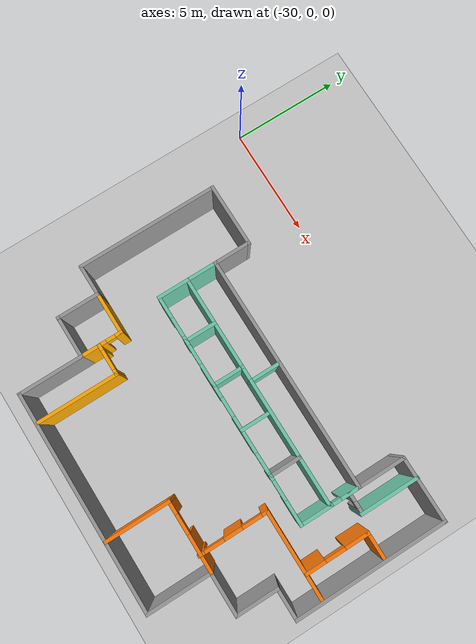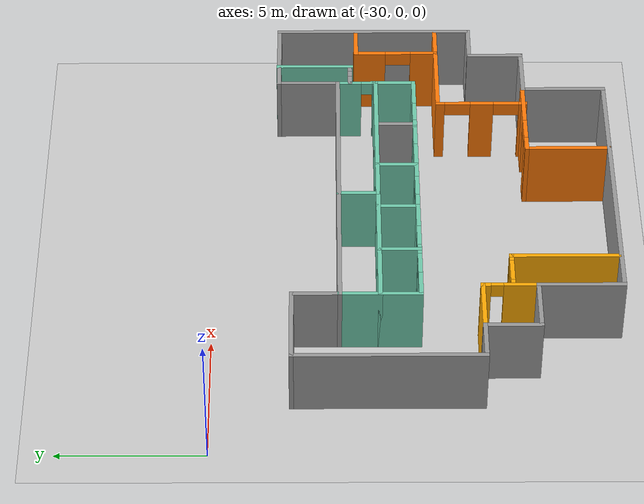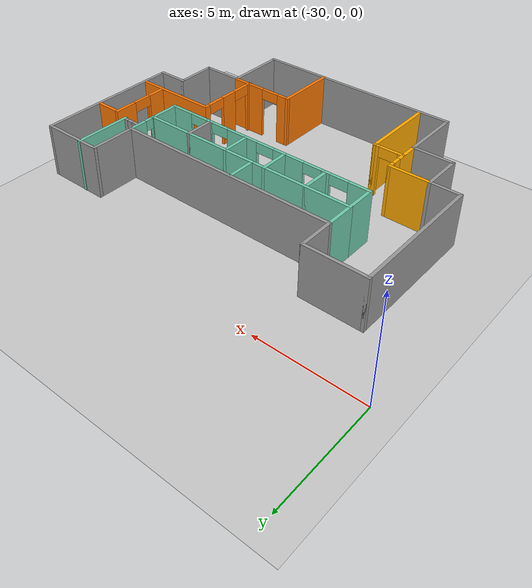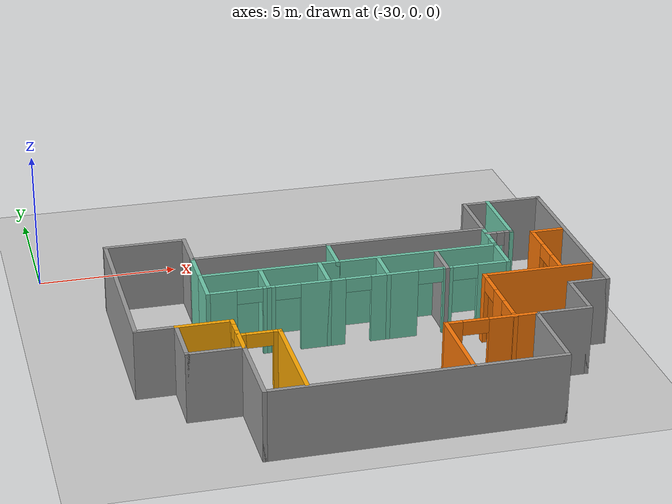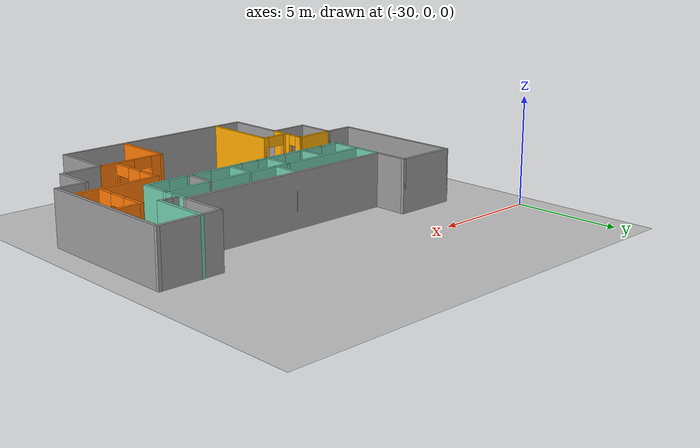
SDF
<sdf version='1.6'>
  <world name='default'>
  <physics name='fleet_physics' type='ode'>
    <max_step_size>0.004</max_step_size>
    <real_time_update_rate>250</real_time_update_rate>
    <real_time_factor>1.0</real_time_factor>
  </physics>
  <plugin name='gazebo_ros_state' filename='libgazebo_ros_state.so'><ros><namespace>/gazebo</namespace></ros><update_rate>60</update_rate></plugin>
  <gravity>0 0 -9.8</gravity>
  <model name="ground_plane">
    <static>1</static>
    <link name="link">
        <collision name="collision">
            <geometry>
                <plane>
                    <normal>0 0 1</normal>
                    <size>100 100</size>
                </plane>
            </geometry>
            <surface>
                <contact>
                    <collide_bitmask>65535</collide_bitmask>
                </contact>
                <friction>
                    <ode>
                        <mu>100</mu>
                        <mu2>50</mu2>
                    </ode>
                </friction>
                <bounce/>
            </surface>
            <max_contacts>10</max_contacts>
        </collision>
        <visual name="visual">
            <cast_shadows>0</cast_shadows>
            <geometry>
                <plane>
                    <normal>0 0 1</normal>
                    <size>100 100</size>
                </plane>
            </geometry>
        </visual>
        <self_collide>0</self_collide>
        <enable_wind>0</enable_wind>
        <kinematic>0</kinematic>
    </link>
</model>
    <include>
      <uri>model://sun</uri>
    </include>

    <include>
      <name>ev_9</name>
      <uri>model://floor_plan</uri>
      <pose>-19.76 -7.98 0 0 0 0</pose>
    </include>

    <gui fullscreen='0'>
      <camera name='user_camera'>
        <pose frame=''>0 -0.5 12.0 0 1.25 1.5666</pose>
        <view_controller>orbit</view_controller>
        <projection_type>perspective</projection_type>
      </camera>
    </gui>

  </world>
</sdf>

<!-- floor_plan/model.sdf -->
<sdf version='1.6'>
  <model name='floor_plan'>
    <pose frame=''>0.552942 -2.96711 0 0 -0 0</pose>
    <link name='Wall_1'>
      <collision name='Wall_1_Collision'>
        <geometry>
          <box>
            <size>6.5 0.15 2.5</size>
          </box>
        </geometry>
        <pose frame=''>0 0 1.25 0 -0 0</pose>
      </collision>
      <visual name='Wall_1_Visual'>
        <pose frame=''>0 0 1.25 0 -0 0</pose>
        <geometry>
          <box>
            <size>6.5 0.15 2.5</size>
          </box>
        </geometry>
        <material>
          <script>
            <uri>file://media/materials/scripts/gazebo.material</uri>
            <name>Gazebo/Grey</name>
          </script>
          <ambient>1 1 1 1</ambient>
        </material>
        <meta>
          <layer>0</layer>
        </meta>
      </visual>
      <pose frame=''>-8.125 2.0896 0 0 0 -1.5708</pose>
    </link>
    <link name='Wall_10'>
      <collision name='Wall_10_Collision'>
        <geometry>
          <box>
            <size>2 0.15 2.5</size>
          </box>
        </geometry>
        <pose frame=''>0 0 1.25 0 -0 0</pose>
      </collision>
      <visual name='Wall_10_Visual'>
        <pose frame=''>0 0 1.25 0 -0 0</pose>
        <geometry>
          <box>
            <size>2 0.15 2.5</size>
          </box>
        </geometry>
        <material>
          <script>
            <uri>file://media/materials/scripts/gazebo.material</uri>
            <name>Gazebo/Grey</name>
          </script>
          <ambient>1 1 1 1</ambient>
        </material>
        <meta>
          <layer>0</layer>
        </meta>
      </visual>
      <pose frame=''>6.775 -2.0104 0 0 -0 1.5708</pose>
    </link>
    <link name='Wall_11'>
      <collision name='Wall_11_Collision'>
        <geometry>
          <box>
            <size>1.5 0.15 2.5</size>
          </box>
        </geometry>
        <pose frame=''>0 0 1.25 0 -0 0</pose>
      </collision>
      <visual name='Wall_11_Visual'>
        <pose frame=''>0 0 1.25 0 -0 0</pose>
        <geometry>
          <box>
            <size>1.5 0.15 2.5</size>
          </box>
        </geometry>
        <material>
          <script>
            <uri>file://media/materials/scripts/gazebo.material</uri>
            <name>Gazebo/Grey</name>
          </script>
          <ambient>1 1 1 1</ambient>
        </material>
        <meta>
          <layer>0</layer>
        </meta>
      </visual>
      <pose frame=''>7.45 -1.0854 0 0 -0 0</pose>
    </link>
    <link name='Wall_12'>
      <collision name='Wall_12_Collision'>
        <geometry>
          <box>
            <size>7 0.15 2.5</size>
          </box>
        </geometry>
        <pose frame=''>0 0 1.25 0 -0 0</pose>
      </collision>
      <visual name='Wall_12_Visual'>
        <pose frame=''>0 0 1.25 0 -0 0</pose>
        <geometry>
          <box>
            <size>7 0.15 2.5</size>
          </box>
        </geometry>
        <material>
          <script>
            <uri>file://media/materials/scripts/gazebo.material</uri>
            <name>Gazebo/Grey</name>
          </script>
          <ambient>1 1 1 1</ambient>
        </material>
        <meta>
          <layer>0</layer>
        </meta>
      </visual>
      <pose frame=''>8.125 2.3396 0 0 -0 1.5708</pose>
    </link>
    <link name='Wall_13'>
      <collision name='Wall_13_Collision'>
        <geometry>
          <box>
            <size>3 0.15 2.5</size>
          </box>
        </geometry>
        <pose frame=''>0 0 1.25 0 -0 0</pose>
      </collision>
      <visual name='Wall_13_Visual'>
        <pose frame=''>0 0 1.25 0 -0 0</pose>
        <geometry>
          <box>
            <size>3 0.15 2.5</size>
          </box>
        </geometry>
        <material>
          <script>
            <uri>file://media/materials/scripts/gazebo.material</uri>
            <name>Gazebo/Grey</name>
          </script>
          <ambient>1 1 1 1</ambient>
        </material>
        <meta>
          <layer>0</layer>
        </meta>
      </visual>
      <pose frame=''>6.7 5.7646 0 0 -0 3.14159</pose>
    </link>
    <link name='Wall_14'>
      <collision name='Wall_14_Collision'>
        <geometry>
          <box>
            <size>2.25 0.15 2.5</size>
          </box>
        </geometry>
        <pose frame=''>0 0 1.25 0 -0 0</pose>
      </collision>
      <visual name='Wall_14_Visual'>
        <pose frame=''>0 0 1.25 0 -0 0</pose>
        <geometry>
          <box>
            <size>2.25 0.15 2.5</size>
          </box>
        </geometry>
        <material>
          <script>
            <uri>file://media/materials/scripts/gazebo.material</uri>
            <name>Gazebo/Grey</name>
          </script>
          <ambient>1 1 1 1</ambient>
        </material>
        <meta>
          <layer>0</layer>
        </meta>
      </visual>
      <pose frame=''>5.275 4.7146 0 0 0 -1.5708</pose>
    </link>
    <link name='Wall_15'>
      <collision name='Wall_15_Collision'>
        <geometry>
          <box>
            <size>10.75 0.15 2.5</size>
          </box>
        </geometry>
        <pose frame=''>0 0 1.25 0 -0 0</pose>
      </collision>
      <visual name='Wall_15_Visual'>
        <pose frame=''>0 0 1.25 0 -0 0</pose>
        <geometry>
          <box>
            <size>10.75 0.15 2.5</size>
          </box>
        </geometry>
        <material>
          <script>
            <uri>file://media/materials/scripts/gazebo.material</uri>
            <name>Gazebo/Grey</name>
          </script>
          <ambient>1 1 1 1</ambient>
        </material>
        <meta>
          <layer>0</layer>
        </meta>
      </visual>
      <pose frame=''>-0.025 3.6646 0 0 -0 3.14159</pose>
    </link>
    <link name='Wall_16'>
      <collision name='Wall_16_Collision'>
        <geometry>
          <box>
            <size>1.75 0.15 2.5</size>
          </box>
        </geometry>
        <pose frame=''>0 0 1.25 0 -0 0</pose>
      </collision>
      <visual name='Wall_16_Visual'>
        <pose frame=''>0 0 1.25 0 -0 0</pose>
        <geometry>
          <box>
            <size>1.75 0.15 2.5</size>
          </box>
        </geometry>
        <material>
          <script>
            <uri>file://media/materials/scripts/gazebo.material</uri>
            <name>Gazebo/Grey</name>
          </script>
          <ambient>1 1 1 1</ambient>
        </material>
        <meta>
          <layer>0</layer>
        </meta>
      </visual>
      <pose frame=''>-5.325 4.4646 0 0 -0 1.5708</pose>
    </link>
    <link name='Wall_18'>
      <collision name='Wall_18_Collision'>
        <geometry>
          <box>
            <size>2.95 0.15 2.5</size>
          </box>
        </geometry>
        <pose frame=''>0 0 1.25 0 -0 0</pose>
      </collision>
      <visual name='Wall_18_Visual'>
        <pose frame=''>0 0 1.25 0 -0 0</pose>
        <geometry>
          <box>
            <size>2.95 0.15 2.5</size>
          </box>
        </geometry>
        <material>
          <script>
            <uri>file://media/materials/scripts/gazebo.material</uri>
            <name>Gazebo/Grey</name>
          </script>
          <ambient>1 1 1 1</ambient>
        </material>
        <meta>
          <layer>0</layer>
        </meta>
      </visual>
      <pose frame=''>-6.725 5.2646 0 0 -0 0</pose>
    </link>
    <link name='Wall_2'>
      <collision name='Wall_2_Collision'>
        <geometry>
          <box>
            <size>1.5 0.15 2.5</size>
          </box>
        </geometry>
        <pose frame=''>0 0 1.25 0 -0 0</pose>
      </collision>
      <visual name='Wall_2_Visual'>
        <pose frame=''>0 0 1.25 0 -0 0</pose>
        <geometry>
          <box>
            <size>1.5 0.15 2.5</size>
          </box>
        </geometry>
        <material>
          <script>
            <uri>file://media/materials/scripts/gazebo.material</uri>
            <name>Gazebo/Grey</name>
          </script>
          <ambient>1 1 1 1</ambient>
        </material>
        <meta>
          <layer>0</layer>
        </meta>
      </visual>
      <pose frame=''>-7.45 -1.0854 0 0 -0 0</pose>
    </link>
    <link name='Wall_20'>
      <collision name='Wall_20_Collision'>
        <geometry>
          <box>
            <size>2 0.15 2.5</size>
          </box>
        </geometry>
        <pose frame=''>0 0 1.25 0 -0 0</pose>
      </collision>
      <visual name='Wall_20_Visual'>
        <pose frame=''>0 0 1.25 0 -0 0</pose>
        <geometry>
          <box>
            <size>2 0.15 2.5</size>
          </box>
        </geometry>
        <material>
          <script>
            <uri>file://media/materials/scripts/gazebo.material</uri>
            <name>Gazebo/Grey</name>
          </script>
          <ambient>1 0.666667 0 1</ambient>
        </material>
        <meta>
          <layer>0</layer>
        </meta>
      </visual>
      <pose frame=''>-5.85 -1.0854 0 0 -0 0</pose>
    </link>
    <link name='Wall_21'>
      <pose frame=''>-4.925 -2.0104 0 0 0 -1.5708</pose>
      <visual name='Wall_21_Visual_0'>
        <pose frame=''>-0.827202 0 1.25 0 -0 0</pose>
        <geometry>
          <box>
            <size>0.345596 0.15 2.5</size>
          </box>
        </geometry>
        <material>
          <script>
            <uri>file://media/materials/scripts/gazebo.material</uri>
            <name>Gazebo/Grey</name>
          </script>
          <ambient>1 0.666667 0 1</ambient>
        </material>
        <meta>
          <layer>0</layer>
        </meta>
      </visual>
      <collision name='Wall_21_Collision_0'>
        <geometry>
          <box>
            <size>0.345596 0.15 2.5</size>
          </box>
        </geometry>
        <pose frame=''>-0.827202 0 1.25 0 -0 0</pose>
      </collision>
      <visual name='Wall_21_Visual_1'>
        <pose frame=''>0.382198 0 1.25 0 -0 0</pose>
        <geometry>
          <box>
            <size>1.2356 0.15 2.5</size>
          </box>
        </geometry>
        <material>
          <script>
            <uri>file://media/materials/scripts/gazebo.material</uri>
            <name>Gazebo/Grey</name>
          </script>
          <ambient>1 0.666667 0 1</ambient>
        </material>
        <meta>
          <layer>0</layer>
        </meta>
      </visual>
      <collision name='Wall_21_Collision_1'>
        <geometry>
          <box>
            <size>1.2356 0.15 2.5</size>
          </box>
        </geometry>
        <pose frame=''>0.382198 0 1.25 0 -0 0</pose>
      </collision>
      <visual name='Wall_21_Visual_2'>
        <pose frame=''>-0.445004 0 2.25 0 -0 0</pose>
        <geometry>
          <box>
            <size>0.418801 0.15 0.5</size>
          </box>
        </geometry>
        <material>
          <script>
            <uri>file://media/materials/scripts/gazebo.material</uri>
            <name>Gazebo/Grey</name>
          </script>
          <ambient>1 0.666667 0 1</ambient>
        </material>
        <meta>
          <layer>0</layer>
        </meta>
      </visual>
      <collision name='Wall_21_Collision_2'>
        <geometry>
          <box>
            <size>0.418801 0.15 0.5</size>
          </box>
        </geometry>
        <pose frame=''>-0.445004 0 2.25 0 -0 0</pose>
      </collision>
    </link>
    <link name='Wall_24'>
      <pose frame=''>-4.23379 -2.09882 0 0 -0 0</pose>
      <visual name='Wall_24_Visual_0'>
        <pose frame=''>-0.6009 0 1.25 0 -0 0</pose>
        <geometry>
          <box>
            <size>0.298199 0.15 2.5</size>
          </box>
        </geometry>
        <material>
          <script>
            <uri>file://media/materials/scripts/gazebo.material</uri>
            <name>Gazebo/Grey</name>
          </script>
          <ambient>1 0.666667 0 1</ambient>
        </material>
        <meta>
          <layer>0</layer>
        </meta>
      </visual>
      <collision name='Wall_24_Collision_0'>
        <geometry>
          <box>
            <size>0.298199 0.15 2.5</size>
          </box>
        </geometry>
        <pose frame=''>-0.6009 0 1.25 0 -0 0</pose>
      </collision>
      <visual name='Wall_24_Visual_1'>
        <pose frame=''>0.5991 0 1.25 0 -0 0</pose>
        <geometry>
          <box>
            <size>0.301801 0.15 2.5</size>
          </box>
        </geometry>
        <material>
          <script>
            <uri>file://media/materials/scripts/gazebo.material</uri>
            <name>Gazebo/Grey</name>
          </script>
          <ambient>1 0.666667 0 1</ambient>
        </material>
        <meta>
          <layer>0</layer>
        </meta>
      </visual>
      <collision name='Wall_24_Collision_1'>
        <geometry>
          <box>
            <size>0.301801 0.15 2.5</size>
          </box>
        </geometry>
        <pose frame=''>0.5991 0 1.25 0 -0 0</pose>
      </collision>
      <visual name='Wall_24_Visual_2'>
        <pose frame=''>-0.001801 0 2.25 0 -0 0</pose>
        <geometry>
          <box>
            <size>0.9 0.15 0.5</size>
          </box>
        </geometry>
        <material>
          <script>
            <uri>file://media/materials/scripts/gazebo.material</uri>
            <name>Gazebo/Grey</name>
          </script>
          <ambient>1 0.666667 0 1</ambient>
        </material>
        <meta>
          <layer>0</layer>
        </meta>
      </visual>
      <collision name='Wall_24_Collision_2'>
        <geometry>
          <box>
            <size>0.9 0.15 0.5</size>
          </box>
        </geometry>
        <pose frame=''>-0.001801 0 2.25 0 -0 0</pose>
      </collision>
    </link>
    <link name='Wall_25'>
      <collision name='Wall_25_Collision'>
        <geometry>
          <box>
            <size>3.75 0.15 2.5</size>
          </box>
        </geometry>
        <pose frame=''>0 0 1.25 0 -0 0</pose>
      </collision>
      <visual name='Wall_25_Visual'>
        <pose frame=''>0 0 1.25 0 -0 0</pose>
        <geometry>
          <box>
            <size>3.75 0.15 2.5</size>
          </box>
        </geometry>
        <material>
          <script>
            <uri>file://media/materials/scripts/gazebo.material</uri>
            <name>Gazebo/Grey</name>
          </script>
          <ambient>1 0.666667 0 1</ambient>
        </material>
        <meta>
          <layer>0</layer>
        </meta>
      </visual>
      <pose frame=''>-3.55879 -3.89882 0 0 0 -1.5708</pose>
    </link>
    <link name='Wall_28'>
      <collision name='Wall_28_Collision'>
        <geometry>
          <box>
            <size>1.5 0.15 2.5</size>
          </box>
        </geometry>
        <pose frame=''>0 0 1.25 0 -0 0</pose>
      </collision>
      <visual name='Wall_28_Visual'>
        <pose frame=''>0 0 1.25 0 -0 0</pose>
        <geometry>
          <box>
            <size>1.5 0.15 2.5</size>
          </box>
        </geometry>
        <material>
          <script>
            <uri>file://media/materials/scripts/gazebo.material</uri>
            <name>Gazebo/Grey</name>
          </script>
          <ambient>0.435294 0.796078 0.67451 1</ambient>
        </material>
        <meta>
          <layer>0</layer>
        </meta>
      </visual>
      <pose frame=''>-5.325 2.9896 0 0 0 -1.5708</pose>
    </link>
    <link name='Wall_29'>
      <collision name='Wall_29_Collision'>
        <geometry>
          <box>
            <size>5 0.15 2.5</size>
          </box>
        </geometry>
        <pose frame=''>0 0 1.25 0 -0 0</pose>
      </collision>
      <visual name='Wall_29_Visual'>
        <pose frame=''>0 0 1.25 0 -0 0</pose>
        <geometry>
          <box>
            <size>5 0.15 2.5</size>
          </box>
        </geometry>
        <material>
          <script>
            <uri>file://media/materials/scripts/gazebo.material</uri>
            <name>Gazebo/Grey</name>
          </script>
          <ambient>0.435294 0.796078 0.67451 1</ambient>
        </material>
        <meta>
          <layer>0</layer>
        </meta>
      </visual>
      <pose frame=''>-2.9 2.3146 0 0 -0 0</pose>
    </link>
    <link name='Wall_3'>
      <collision name='Wall_3_Collision'>
        <geometry>
          <box>
            <size>2 0.15 2.5</size>
          </box>
        </geometry>
        <pose frame=''>0 0 1.25 0 -0 0</pose>
      </collision>
      <visual name='Wall_3_Visual'>
        <pose frame=''>0 0 1.25 0 -0 0</pose>
        <geometry>
          <box>
            <size>2 0.15 2.5</size>
          </box>
        </geometry>
        <material>
          <script>
            <uri>file://media/materials/scripts/gazebo.material</uri>
            <name>Gazebo/Grey</name>
          </script>
          <ambient>1 1 1 1</ambient>
        </material>
        <meta>
          <layer>0</layer>
        </meta>
      </visual>
      <pose frame=''>-6.775 -2.0104 0 0 0 -1.5708</pose>
    </link>
    <link name='Wall_30'>
      <collision name='Wall_30_Collision'>
        <geometry>
          <box>
            <size>1.5 0.15 2.5</size>
          </box>
        </geometry>
        <pose frame=''>0 0 1.25 0 -0 0</pose>
      </collision>
      <visual name='Wall_30_Visual'>
        <pose frame=''>0 0 1.25 0 -0 0</pose>
        <geometry>
          <box>
            <size>1.5 0.15 2.5</size>
          </box>
        </geometry>
        <material>
          <script>
            <uri>file://media/materials/scripts/gazebo.material</uri>
            <name>Gazebo/Grey</name>
          </script>
          <ambient>0.435294 0.796078 0.67451 1</ambient>
        </material>
        <meta>
          <layer>0</layer>
        </meta>
      </visual>
      <pose frame=''>-0.475 2.9896 0 0 -0 1.5708</pose>
    </link>
    <link name='Wall_32'>
      <collision name='Wall_32_Collision'>
        <geometry>
          <box>
            <size>5.9 0.15 2.5</size>
          </box>
        </geometry>
        <pose frame=''>0 0 1.25 0 -0 0</pose>
      </collision>
      <visual name='Wall_32_Visual'>
        <pose frame=''>0 0 1.25 0 -0 0</pose>
        <geometry>
          <box>
            <size>5.9 0.15 2.5</size>
          </box>
        </geometry>
        <material>
          <script>
            <uri>file://media/materials/scripts/gazebo.material</uri>
            <name>Gazebo/Grey</name>
          </script>
          <ambient>0.435294 0.796078 0.67451 1</ambient>
        </material>
        <meta>
          <layer>0</layer>
        </meta>
      </visual>
      <pose frame=''>2.4 2.3146 0 0 -0 0</pose>
    </link>
    <link name='Wall_33'>
      <pose frame=''>5.275 2.9896 0 0 -0 1.5708</pose>
      <visual name='Wall_33_Visual_0'>
        <pose frame=''>-0.651951 0 1.25 0 -0 0</pose>
        <geometry>
          <box>
            <size>0.196098 0.15 2.5</size>
          </box>
        </geometry>
        <material>
          <script>
            <uri>file://media/materials/scripts/gazebo.material</uri>
            <name>Gazebo/Grey</name>
          </script>
          <ambient>0.435294 0.796078 0.67451 1</ambient>
        </material>
        <meta>
          <layer>0</layer>
        </meta>
      </visual>
      <collision name='Wall_33_Collision_0'>
        <geometry>
          <box>
            <size>0.196098 0.15 2.5</size>
          </box>
        </geometry>
        <pose frame=''>-0.651951 0 1.25 0 -0 0</pose>
      </collision>
      <visual name='Wall_33_Visual_1'>
        <pose frame=''>0.292412 0 1.25 0 -0 0</pose>
        <geometry>
          <box>
            <size>0.915176 0.15 2.5</size>
          </box>
        </geometry>
        <material>
          <script>
            <uri>file://media/materials/scripts/gazebo.material</uri>
            <name>Gazebo/Grey</name>
          </script>
          <ambient>0.435294 0.796078 0.67451 1</ambient>
        </material>
        <meta>
          <layer>0</layer>
        </meta>
      </visual>
      <collision name='Wall_33_Collision_1'>
        <geometry>
          <box>
            <size>0.915176 0.15 2.5</size>
          </box>
        </geometry>
        <pose frame=''>0.292412 0 1.25 0 -0 0</pose>
      </collision>
      <visual name='Wall_33_Visual_2'>
        <pose frame=''>-0.359539 0 2.25 0 -0 0</pose>
        <geometry>
          <box>
            <size>0.388726 0.15 0.5</size>
          </box>
        </geometry>
        <material>
          <script>
            <uri>file://media/materials/scripts/gazebo.material</uri>
            <name>Gazebo/Grey</name>
          </script>
          <ambient>0.435294 0.796078 0.67451 1</ambient>
        </material>
        <meta>
          <layer>0</layer>
        </meta>
      </visual>
      <collision name='Wall_33_Collision_2'>
        <geometry>
          <box>
            <size>0.388726 0.15 0.5</size>
          </box>
        </geometry>
        <pose frame=''>-0.359539 0 2.25 0 -0 0</pose>
      </collision>
    </link>
    <link name='Wall_35'>
      <collision name='Wall_35_Collision'>
        <geometry>
          <box>
            <size>1.5 0.15 2.5</size>
          </box>
        </geometry>
        <pose frame=''>0 0 1.25 0 -0 0</pose>
      </collision>
      <visual name='Wall_35_Visual'>
        <pose frame=''>0 0 1.25 0 -0 0</pose>
        <geometry>
          <box>
            <size>1.5 0.15 2.5</size>
          </box>
        </geometry>
        <material>
          <script>
            <uri>file://media/materials/scripts/gazebo.material</uri>
            <name>Gazebo/Grey</name>
          </script>
          <ambient>0.435294 0.796078 0.67451 1</ambient>
        </material>
        <meta>
          <layer>0</layer>
        </meta>
      </visual>
      <pose frame=''>-5.325 1.6396 0 0 0 -1.5708</pose>
    </link>
    <link name='Wall_36'>
      <pose frame=''>-4.275 0.964604 0 0 -0 0</pose>
      <visual name='Wall_36_Visual_0'>
        <pose frame=''>-0.591928 0 1.25 0 -0 0</pose>
        <geometry>
          <box>
            <size>1.06614 0.15 2.5</size>
          </box>
        </geometry>
        <material>
          <script>
            <uri>file://media/materials/scripts/gazebo.material</uri>
            <name>Gazebo/Grey</name>
          </script>
          <ambient>0.435294 0.796078 0.67451 1</ambient>
        </material>
        <meta>
          <layer>0</layer>
        </meta>
      </visual>
      <collision name='Wall_36_Collision_0'>
        <geometry>
          <box>
            <size>1.06614 0.15 2.5</size>
          </box>
        </geometry>
        <pose frame=''>-0.591928 0 1.25 0 -0 0</pose>
      </collision>
      <visual name='Wall_36_Visual_1'>
        <pose frame=''>0.983072 0 1.25 0 -0 0</pose>
        <geometry>
          <box>
            <size>0.283855 0.15 2.5</size>
          </box>
        </geometry>
        <material>
          <script>
            <uri>file://media/materials/scripts/gazebo.material</uri>
            <name>Gazebo/Grey</name>
          </script>
          <ambient>0.435294 0.796078 0.67451 1</ambient>
        </material>
        <meta>
          <layer>0</layer>
        </meta>
      </visual>
      <collision name='Wall_36_Collision_1'>
        <geometry>
          <box>
            <size>0.283855 0.15 2.5</size>
          </box>
        </geometry>
        <pose frame=''>0.983072 0 1.25 0 -0 0</pose>
      </collision>
      <visual name='Wall_36_Visual_2'>
        <pose frame=''>0.391145 0 2.25 0 -0 0</pose>
        <geometry>
          <box>
            <size>0.9 0.15 0.5</size>
          </box>
        </geometry>
        <material>
          <script>
            <uri>file://media/materials/scripts/gazebo.material</uri>
            <name>Gazebo/Grey</name>
          </script>
          <ambient>0.435294 0.796078 0.67451 1</ambient>
        </material>
        <meta>
          <layer>0</layer>
        </meta>
      </visual>
      <collision name='Wall_36_Collision_2'>
        <geometry>
          <box>
            <size>0.9 0.15 0.5</size>
          </box>
        </geometry>
        <pose frame=''>0.391145 0 2.25 0 -0 0</pose>
      </collision>
    </link>
    <link name='Wall_37'>
      <collision name='Wall_37_Collision'>
        <geometry>
          <box>
            <size>1.5 0.15 2.5</size>
          </box>
        </geometry>
        <pose frame=''>0 0 1.25 0 -0 0</pose>
      </collision>
      <visual name='Wall_37_Visual'>
        <pose frame=''>0 0 1.25 0 -0 0</pose>
        <geometry>
          <box>
            <size>1.5 0.15 2.5</size>
          </box>
        </geometry>
        <material>
          <script>
            <uri>file://media/materials/scripts/gazebo.material</uri>
            <name>Gazebo/Grey</name>
          </script>
          <ambient>0.435294 0.796078 0.67451 1</ambient>
        </material>
        <meta>
          <layer>0</layer>
        </meta>
      </visual>
      <pose frame=''>-3.225 1.6396 0 0 -0 1.5708</pose>
    </link>
    <link name='Wall_39'>
      <pose frame=''>-2.175 0.964604 0 0 -0 0</pose>
      <visual name='Wall_39_Visual_0'>
        <pose frame=''>-0.980278 0 1.25 0 -0 0</pose>
        <geometry>
          <box>
            <size>0.289443 0.15 2.5</size>
          </box>
        </geometry>
        <material>
          <script>
            <uri>file://media/materials/scripts/gazebo.material</uri>
            <name>Gazebo/Grey</name>
          </script>
          <ambient>0.435294 0.796078 0.67451 1</ambient>
        </material>
        <meta>
          <layer>0</layer>
        </meta>
      </visual>
      <collision name='Wall_39_Collision_0'>
        <geometry>
          <box>
            <size>0.289443 0.15 2.5</size>
          </box>
        </geometry>
        <pose frame=''>-0.980278 0 1.25 0 -0 0</pose>
      </collision>
      <visual name='Wall_39_Visual_1'>
        <pose frame=''>0.594722 0 1.25 0 -0 0</pose>
        <geometry>
          <box>
            <size>1.06056 0.15 2.5</size>
          </box>
        </geometry>
        <material>
          <script>
            <uri>file://media/materials/scripts/gazebo.material</uri>
            <name>Gazebo/Grey</name>
          </script>
          <ambient>0.435294 0.796078 0.67451 1</ambient>
        </material>
        <meta>
          <layer>0</layer>
        </meta>
      </visual>
      <collision name='Wall_39_Collision_1'>
        <geometry>
          <box>
            <size>1.06056 0.15 2.5</size>
          </box>
        </geometry>
        <pose frame=''>0.594722 0 1.25 0 -0 0</pose>
      </collision>
      <visual name='Wall_39_Visual_2'>
        <pose frame=''>-0.385557 0 2.25 0 -0 0</pose>
        <geometry>
          <box>
            <size>0.9 0.15 0.5</size>
          </box>
        </geometry>
        <material>
          <script>
            <uri>file://media/materials/scripts/gazebo.material</uri>
            <name>Gazebo/Grey</name>
          </script>
          <ambient>0.435294 0.796078 0.67451 1</ambient>
        </material>
        <meta>
          <layer>0</layer>
        </meta>
      </visual>
      <collision name='Wall_39_Collision_2'>
        <geometry>
          <box>
            <size>0.9 0.15 0.5</size>
          </box>
        </geometry>
        <pose frame=''>-0.385557 0 2.25 0 -0 0</pose>
      </collision>
    </link>
    <link name='Wall_4'>
      <collision name='Wall_4_Collision'>
        <geometry>
          <box>
            <size>2 0.15 2.5</size>
          </box>
        </geometry>
        <pose frame=''>0 0 1.25 0 -0 0</pose>
      </collision>
      <visual name='Wall_4_Visual'>
        <pose frame=''>0 0 1.25 0 -0 0</pose>
        <geometry>
          <box>
            <size>2 0.15 2.5</size>
          </box>
        </geometry>
        <material>
          <script>
            <uri>file://media/materials/scripts/gazebo.material</uri>
            <name>Gazebo/Grey</name>
          </script>
          <ambient>1 1 1 1</ambient>
        </material>
        <meta>
          <layer>0</layer>
        </meta>
      </visual>
      <pose frame=''>-5.85 -2.9354 0 0 -0 0</pose>
    </link>
    <link name='Wall_40'>
      <collision name='Wall_40_Collision'>
        <geometry>
          <box>
            <size>1.5 0.15 2.5</size>
          </box>
        </geometry>
        <pose frame=''>0 0 1.25 0 -0 0</pose>
      </collision>
      <visual name='Wall_40_Visual'>
        <pose frame=''>0 0 1.25 0 -0 0</pose>
        <geometry>
          <box>
            <size>1.5 0.15 2.5</size>
          </box>
        </geometry>
        <material>
          <script>
            <uri>file://media/materials/scripts/gazebo.material</uri>
            <name>Gazebo/Grey</name>
          </script>
          <ambient>0.435294 0.796078 0.67451 1</ambient>
        </material>
        <meta>
          <layer>0</layer>
        </meta>
      </visual>
      <pose frame=''>-1.125 1.6396 0 0 -0 1.5708</pose>
    </link>
    <link name='Wall_42'>
      <pose frame=''>-0.075 0.964604 0 0 -0 0</pose>
      <visual name='Wall_42_Visual_0'>
        <pose frame=''>-0.797205 0 1.25 0 -0 0</pose>
        <geometry>
          <box>
            <size>0.65559 0.15 2.5</size>
          </box>
        </geometry>
        <material>
          <script>
            <uri>file://media/materials/scripts/gazebo.material</uri>
            <name>Gazebo/Grey</name>
          </script>
          <ambient>0.435294 0.796078 0.67451 1</ambient>
        </material>
        <meta>
          <layer>0</layer>
        </meta>
      </visual>
      <collision name='Wall_42_Collision_0'>
        <geometry>
          <box>
            <size>0.65559 0.15 2.5</size>
          </box>
        </geometry>
        <pose frame=''>-0.797205 0 1.25 0 -0 0</pose>
      </collision>
      <visual name='Wall_42_Visual_1'>
        <pose frame=''>0.777795 0 1.25 0 -0 0</pose>
        <geometry>
          <box>
            <size>0.69441 0.15 2.5</size>
          </box>
        </geometry>
        <material>
          <script>
            <uri>file://media/materials/scripts/gazebo.material</uri>
            <name>Gazebo/Grey</name>
          </script>
          <ambient>0.435294 0.796078 0.67451 1</ambient>
        </material>
        <meta>
          <layer>0</layer>
        </meta>
      </visual>
      <collision name='Wall_42_Collision_1'>
        <geometry>
          <box>
            <size>0.69441 0.15 2.5</size>
          </box>
        </geometry>
        <pose frame=''>0.777795 0 1.25 0 -0 0</pose>
      </collision>
      <visual name='Wall_42_Visual_2'>
        <pose frame=''>-0.01941 0 2.25 0 -0 0</pose>
        <geometry>
          <box>
            <size>0.9 0.15 0.5</size>
          </box>
        </geometry>
        <material>
          <script>
            <uri>file://media/materials/scripts/gazebo.material</uri>
            <name>Gazebo/Grey</name>
          </script>
          <ambient>0.435294 0.796078 0.67451 1</ambient>
        </material>
        <meta>
          <layer>0</layer>
        </meta>
      </visual>
      <collision name='Wall_42_Collision_2'>
        <geometry>
          <box>
            <size>0.9 0.15 0.5</size>
          </box>
        </geometry>
        <pose frame=''>-0.01941 0 2.25 0 -0 0</pose>
      </collision>
    </link>
    <link name='Wall_43'>
      <collision name='Wall_43_Collision'>
        <geometry>
          <box>
            <size>1.5 0.15 2.5</size>
          </box>
        </geometry>
        <pose frame=''>0 0 1.25 0 -0 0</pose>
      </collision>
      <visual name='Wall_43_Visual'>
        <pose frame=''>0 0 1.25 0 -0 0</pose>
        <geometry>
          <box>
            <size>1.5 0.15 2.5</size>
          </box>
        </geometry>
        <material>
          <script>
            <uri>file://media/materials/scripts/gazebo.material</uri>
            <name>Gazebo/Grey</name>
          </script>
          <ambient>0.435294 0.796078 0.67451 1</ambient>
        </material>
        <meta>
          <layer>0</layer>
        </meta>
      </visual>
      <pose frame=''>0.975 1.6396 0 0 -0 1.5708</pose>
    </link>
    <link name='Wall_45'>
      <pose frame=''>2.025 0.964604 0 0 -0 0</pose>
      <visual name='Wall_45_Visual_0'>
        <pose frame=''>-0.5615 0 1.25 0 -0 0</pose>
        <geometry>
          <box>
            <size>1.127 0.15 2.5</size>
          </box>
        </geometry>
        <material>
          <script>
            <uri>file://media/materials/scripts/gazebo.material</uri>
            <name>Gazebo/Grey</name>
          </script>
          <ambient>0.435294 0.796078 0.67451 1</ambient>
        </material>
        <meta>
          <layer>0</layer>
        </meta>
      </visual>
      <collision name='Wall_45_Collision_0'>
        <geometry>
          <box>
            <size>1.127 0.15 2.5</size>
          </box>
        </geometry>
        <pose frame=''>-0.5615 0 1.25 0 -0 0</pose>
      </collision>
      <visual name='Wall_45_Visual_1'>
        <pose frame=''>1.0135 0 1.25 0 -0 0</pose>
        <geometry>
          <box>
            <size>0.223 0.15 2.5</size>
          </box>
        </geometry>
        <material>
          <script>
            <uri>file://media/materials/scripts/gazebo.material</uri>
            <name>Gazebo/Grey</name>
          </script>
          <ambient>0.435294 0.796078 0.67451 1</ambient>
        </material>
        <meta>
          <layer>0</layer>
        </meta>
      </visual>
      <collision name='Wall_45_Collision_1'>
        <geometry>
          <box>
            <size>0.223 0.15 2.5</size>
          </box>
        </geometry>
        <pose frame=''>1.0135 0 1.25 0 -0 0</pose>
      </collision>
      <visual name='Wall_45_Visual_2'>
        <pose frame=''>0.452 0 2.25 0 -0 0</pose>
        <geometry>
          <box>
            <size>0.9 0.15 0.5</size>
          </box>
        </geometry>
        <material>
          <script>
            <uri>file://media/materials/scripts/gazebo.material</uri>
            <name>Gazebo/Grey</name>
          </script>
          <ambient>0.435294 0.796078 0.67451 1</ambient>
        </material>
        <meta>
          <layer>0</layer>
        </meta>
      </visual>
      <collision name='Wall_45_Collision_2'>
        <geometry>
          <box>
            <size>0.9 0.15 0.5</size>
          </box>
        </geometry>
        <pose frame=''>0.452 0 2.25 0 -0 0</pose>
      </collision>
    </link>
    <link name='Wall_46'>
      <collision name='Wall_46_Collision'>
        <geometry>
          <box>
            <size>1.5 0.15 2.5</size>
          </box>
        </geometry>
        <pose frame=''>0 0 1.25 0 -0 0</pose>
      </collision>
      <visual name='Wall_46_Visual'>
        <pose frame=''>0 0 1.25 0 -0 0</pose>
        <geometry>
          <box>
            <size>1.5 0.15 2.5</size>
          </box>
        </geometry>
        <material>
          <script>
            <uri>file://media/materials/scripts/gazebo.material</uri>
            <name>Gazebo/Grey</name>
          </script>
          <ambient>1 1 1 1</ambient>
        </material>
        <meta>
          <layer>0</layer>
        </meta>
      </visual>
      <pose frame=''>3.075 1.6396 0 0 -0 1.5708</pose>
    </link>
    <link name='Wall_48'>
      <pose frame=''>4.175 0.964604 0 0 -0 0</pose>
      <visual name='Wall_48_Visual_0'>
        <pose frame=''>-1.03744 0 1.25 0 -0 0</pose>
        <geometry>
          <box>
            <size>0.275111 0.15 2.5</size>
          </box>
        </geometry>
        <material>
          <script>
            <uri>file://media/materials/scripts/gazebo.material</uri>
            <name>Gazebo/Grey</name>
          </script>
          <ambient>0.435294 0.796078 0.67451 1</ambient>
        </material>
        <meta>
          <layer>0</layer>
        </meta>
      </visual>
      <collision name='Wall_48_Collision_0'>
        <geometry>
          <box>
            <size>0.275111 0.15 2.5</size>
          </box>
        </geometry>
        <pose frame=''>-1.03744 0 1.25 0 -0 0</pose>
      </collision>
      <visual name='Wall_48_Visual_1'>
        <pose frame=''>0.587555 0 1.25 0 -0 0</pose>
        <geometry>
          <box>
            <size>1.17489 0.15 2.5</size>
          </box>
        </geometry>
        <material>
          <script>
            <uri>file://media/materials/scripts/gazebo.material</uri>
            <name>Gazebo/Grey</name>
          </script>
          <ambient>0.435294 0.796078 0.67451 1</ambient>
        </material>
        <meta>
          <layer>0</layer>
        </meta>
      </visual>
      <collision name='Wall_48_Collision_1'>
        <geometry>
          <box>
            <size>1.17489 0.15 2.5</size>
          </box>
        </geometry>
        <pose frame=''>0.587555 0 1.25 0 -0 0</pose>
      </collision>
      <visual name='Wall_48_Visual_2'>
        <pose frame=''>-0.449889 0 2.25 0 -0 0</pose>
        <geometry>
          <box>
            <size>0.9 0.15 0.5</size>
          </box>
        </geometry>
        <material>
          <script>
            <uri>file://media/materials/scripts/gazebo.material</uri>
            <name>Gazebo/Grey</name>
          </script>
          <ambient>0.435294 0.796078 0.67451 1</ambient>
        </material>
        <meta>
          <layer>0</layer>
        </meta>
      </visual>
      <collision name='Wall_48_Collision_2'>
        <geometry>
          <box>
            <size>0.9 0.15 0.5</size>
          </box>
        </geometry>
        <pose frame=''>-0.449889 0 2.25 0 -0 0</pose>
      </collision>
    </link>
    <link name='Wall_49'>
      <collision name='Wall_49_Collision'>
        <geometry>
          <box>
            <size>1.5 0.15 2.5</size>
          </box>
        </geometry>
        <pose frame=''>0 0 1.25 0 -0 0</pose>
      </collision>
      <visual name='Wall_49_Visual'>
        <pose frame=''>0 0 1.25 0 -0 0</pose>
        <geometry>
          <box>
            <size>1.5 0.15 2.5</size>
          </box>
        </geometry>
        <material>
          <script>
            <uri>file://media/materials/scripts/gazebo.material</uri>
            <name>Gazebo/Grey</name>
          </script>
          <ambient>0.435294 0.796078 0.67451 1</ambient>
        </material>
        <meta>
          <layer>0</layer>
        </meta>
      </visual>
      <pose frame=''>5.275 1.6396 0 0 -0 1.5708</pose>
    </link>
    <link name='Wall_52'>
      <collision name='Wall_52_Collision'>
        <geometry>
          <box>
            <size>3 0.15 2.5</size>
          </box>
        </geometry>
        <pose frame=''>0 0 1.25 0 -0 0</pose>
      </collision>
      <visual name='Wall_52_Visual'>
        <pose frame=''>0 0 1.25 0 -0 0</pose>
        <geometry>
          <box>
            <size>3 0.15 2.5</size>
          </box>
        </geometry>
        <material>
          <script>
            <uri>file://media/materials/scripts/gazebo.material</uri>
            <name>Gazebo/Grey</name>
          </script>
          <ambient>0.996078 0.47451 0.0196078 1</ambient>
        </material>
        <meta>
          <layer>0</layer>
        </meta>
      </visual>
      <pose frame=''>1.79248 -4.3395 0 0 -0 1.5708</pose>
    </link>
    <link name='Wall_53'>
      <pose frame=''>3.34247 -2.91451 0 0 -0 0</pose>
      <visual name='Wall_53_Visual_0'>
        <pose frame=''>-1.30739 0 1.25 0 -0 0</pose>
        <geometry>
          <box>
            <size>0.635222 0.15 2.5</size>
          </box>
        </geometry>
        <material>
          <script>
            <uri>file://media/materials/scripts/gazebo.material</uri>
            <name>Gazebo/Grey</name>
          </script>
          <ambient>0.996078 0.47451 0.0196078 1</ambient>
        </material>
        <meta>
          <layer>0</layer>
        </meta>
      </visual>
      <collision name='Wall_53_Collision_0'>
        <geometry>
          <box>
            <size>0.635222 0.15 2.5</size>
          </box>
        </geometry>
        <pose frame=''>-1.30739 0 1.25 0 -0 0</pose>
      </collision>
      <visual name='Wall_53_Visual_1'>
        <pose frame=''>0.767611 0 1.25 0 -0 0</pose>
        <geometry>
          <box>
            <size>1.71478 0.15 2.5</size>
          </box>
        </geometry>
        <material>
          <script>
            <uri>file://media/materials/scripts/gazebo.material</uri>
            <name>Gazebo/Grey</name>
          </script>
          <ambient>0.996078 0.47451 0.0196078 1</ambient>
        </material>
        <meta>
          <layer>0</layer>
        </meta>
      </visual>
      <collision name='Wall_53_Collision_1'>
        <geometry>
          <box>
            <size>1.71478 0.15 2.5</size>
          </box>
        </geometry>
        <pose frame=''>0.767611 0 1.25 0 -0 0</pose>
      </collision>
      <visual name='Wall_53_Visual_2'>
        <pose frame=''>-0.539778 0 2.25 0 -0 0</pose>
        <geometry>
          <box>
            <size>0.9 0.15 0.5</size>
          </box>
        </geometry>
        <material>
          <script>
            <uri>file://media/materials/scripts/gazebo.material</uri>
            <name>Gazebo/Grey</name>
          </script>
          <ambient>0.996078 0.47451 0.0196078 1</ambient>
        </material>
        <meta>
          <layer>0</layer>
        </meta>
      </visual>
      <collision name='Wall_53_Collision_2'>
        <geometry>
          <box>
            <size>0.9 0.15 0.5</size>
          </box>
        </geometry>
        <pose frame=''>-0.539778 0 2.25 0 -0 0</pose>
      </collision>
    </link>
    <link name='Wall_55'>
      <pose frame=''>4.1528 -1.42238 0 0 -0 1.5708</pose>
      <visual name='Wall_55_Visual_0'>
        <pose frame=''>-1.47502 0 1.25 0 -0 0</pose>
        <geometry>
          <box>
            <size>0.299954 0.15 2.5</size>
          </box>
        </geometry>
        <material>
          <script>
            <uri>file://media/materials/scripts/gazebo.material</uri>
            <name>Gazebo/Grey</name>
          </script>
          <ambient>0.996078 0.47451 0.0196078 1</ambient>
        </material>
        <meta>
          <layer>0</layer>
        </meta>
      </visual>
      <collision name='Wall_55_Collision_0'>
        <geometry>
          <box>
            <size>0.299954 0.15 2.5</size>
          </box>
        </geometry>
        <pose frame=''>-1.47502 0 1.25 0 -0 0</pose>
      </collision>
      <visual name='Wall_55_Visual_1'>
        <pose frame=''>-0.010391 0 1.25 0 -0 0</pose>
        <geometry>
          <box>
            <size>0.82931 0.15 2.5</size>
          </box>
        </geometry>
        <material>
          <script>
            <uri>file://media/materials/scripts/gazebo.material</uri>
            <name>Gazebo/Grey</name>
          </script>
          <ambient>0.996078 0.47451 0.0196078 1</ambient>
        </material>
        <meta>
          <layer>0</layer>
        </meta>
      </visual>
      <collision name='Wall_55_Collision_1'>
        <geometry>
          <box>
            <size>0.82931 0.15 2.5</size>
          </box>
        </geometry>
        <pose frame=''>-0.010391 0 1.25 0 -0 0</pose>
      </collision>
      <visual name='Wall_55_Visual_2'>
        <pose frame=''>1.46463 0 1.25 0 -0 0</pose>
        <geometry>
          <box>
            <size>0.320736 0.15 2.5</size>
          </box>
        </geometry>
        <material>
          <script>
            <uri>file://media/materials/scripts/gazebo.material</uri>
            <name>Gazebo/Grey</name>
          </script>
          <ambient>0.996078 0.47451 0.0196078 1</ambient>
        </material>
        <meta>
          <layer>0</layer>
        </meta>
      </visual>
      <collision name='Wall_55_Collision_2'>
        <geometry>
          <box>
            <size>0.320736 0.15 2.5</size>
          </box>
        </geometry>
        <pose frame=''>1.46463 0 1.25 0 -0 0</pose>
      </collision>
      <visual name='Wall_55_Visual_3'>
        <pose frame=''>-0.875046 0 2.25 0 -0 0</pose>
        <geometry>
          <box>
            <size>0.9 0.15 0.5</size>
          </box>
        </geometry>
        <material>
          <script>
            <uri>file://media/materials/scripts/gazebo.material</uri>
            <name>Gazebo/Grey</name>
          </script>
          <ambient>0.996078 0.47451 0.0196078 1</ambient>
        </material>
        <meta>
          <layer>0</layer>
        </meta>
      </visual>
      <collision name='Wall_55_Collision_3'>
        <geometry>
          <box>
            <size>0.9 0.15 0.5</size>
          </box>
        </geometry>
        <pose frame=''>-0.875046 0 2.25 0 -0 0</pose>
      </collision>
      <visual name='Wall_55_Visual_4'>
        <pose frame=''>0.854264 0 2.25 0 -0 0</pose>
        <geometry>
          <box>
            <size>0.9 0.15 0.5</size>
          </box>
        </geometry>
        <material>
          <script>
            <uri>file://media/materials/scripts/gazebo.material</uri>
            <name>Gazebo/Grey</name>
          </script>
          <ambient>0.996078 0.47451 0.0196078 1</ambient>
        </material>
        <meta>
          <layer>0</layer>
        </meta>
      </visual>
      <collision name='Wall_55_Collision_4'>
        <geometry>
          <box>
            <size>0.9 0.15 0.5</size>
          </box>
        </geometry>
        <pose frame=''>0.854264 0 2.25 0 -0 0</pose>
      </collision>
    </link>
    <link name='Wall_56'>
      <collision name='Wall_56_Collision'>
        <geometry>
          <box>
            <size>4 0.15 2.5</size>
          </box>
        </geometry>
        <pose frame=''>0 0 1.25 0 -0 0</pose>
      </collision>
      <visual name='Wall_56_Visual'>
        <pose frame=''>0 0 1.25 0 -0 0</pose>
        <geometry>
          <box>
            <size>4 0.15 2.5</size>
          </box>
        </geometry>
        <material>
          <script>
            <uri>file://media/materials/scripts/gazebo.material</uri>
            <name>Gazebo/Grey</name>
          </script>
          <ambient>0.996078 0.47451 0.0196078 1</ambient>
        </material>
        <meta>
          <layer>0</layer>
        </meta>
      </visual>
      <pose frame=''>6.0778 0.127624 0 0 -0 0</pose>
    </link>
    <link name='Wall_6'>
      <collision name='Wall_6_Collision'>
        <geometry>
          <box>
            <size>3 0.15 2.5</size>
          </box>
        </geometry>
        <pose frame=''>0 0 1.25 0 -0 0</pose>
      </collision>
      <visual name='Wall_6_Visual'>
        <pose frame=''>0 0 1.25 0 -0 0</pose>
        <geometry>
          <box>
            <size>3 0.15 2.5</size>
          </box>
        </geometry>
        <material>
          <script>
            <uri>file://media/materials/scripts/gazebo.material</uri>
            <name>Gazebo/Grey</name>
          </script>
          <ambient>1 1 1 1</ambient>
        </material>
        <meta>
          <layer>0</layer>
        </meta>
      </visual>
      <pose frame=''>-4.925 -4.3604 0 0 0 -1.5708</pose>
    </link>
    <link name='Wall_62'>
      <pose frame=''>6.91124 1.57043 0 0 -0 1.5708</pose>
      <visual name='Wall_62_Visual_0'>
        <pose frame=''>-1.01661 0 1.25 0 -0 0</pose>
        <geometry>
          <box>
            <size>0.966784 0.15 2.5</size>
          </box>
        </geometry>
        <material>
          <script>
            <uri>file://media/materials/scripts/gazebo.material</uri>
            <name>Gazebo/Grey</name>
          </script>
          <ambient>0.996078 0.47451 0.0196078 1</ambient>
        </material>
        <meta>
          <layer>0</layer>
        </meta>
      </visual>
      <collision name='Wall_62_Collision_0'>
        <geometry>
          <box>
            <size>0.966784 0.15 2.5</size>
          </box>
        </geometry>
        <pose frame=''>-1.01661 0 1.25 0 -0 0</pose>
      </collision>
      <visual name='Wall_62_Visual_1'>
        <pose frame=''>0.933392 0 1.25 0 -0 0</pose>
        <geometry>
          <box>
            <size>1.13322 0.15 2.5</size>
          </box>
        </geometry>
        <material>
          <script>
            <uri>file://media/materials/scripts/gazebo.material</uri>
            <name>Gazebo/Grey</name>
          </script>
          <ambient>0.996078 0.47451 0.0196078 1</ambient>
        </material>
        <meta>
          <layer>0</layer>
        </meta>
      </visual>
      <collision name='Wall_62_Collision_1'>
        <geometry>
          <box>
            <size>1.13322 0.15 2.5</size>
          </box>
        </geometry>
        <pose frame=''>0.933392 0 1.25 0 -0 0</pose>
      </collision>
      <visual name='Wall_62_Visual_2'>
        <pose frame=''>-0.083216 0 2.25 0 -0 0</pose>
        <geometry>
          <box>
            <size>0.9 0.15 0.5</size>
          </box>
        </geometry>
        <material>
          <script>
            <uri>file://media/materials/scripts/gazebo.material</uri>
            <name>Gazebo/Grey</name>
          </script>
          <ambient>0.996078 0.47451 0.0196078 1</ambient>
        </material>
        <meta>
          <layer>0</layer>
        </meta>
      </visual>
      <collision name='Wall_62_Collision_2'>
        <geometry>
          <box>
            <size>0.9 0.15 0.5</size>
          </box>
        </geometry>
        <pose frame=''>-0.083216 0 2.25 0 -0 0</pose>
      </collision>
    </link>
    <link name='Wall_63'>
      <collision name='Wall_63_Collision'>
        <geometry>
          <box>
            <size>1.25 0.15 2.5</size>
          </box>
        </geometry>
        <pose frame=''>0 0 1.25 0 -0 0</pose>
      </collision>
      <visual name='Wall_63_Visual'>
        <pose frame=''>0 0 1.25 0 -0 0</pose>
        <geometry>
          <box>
            <size>1.25 0.15 2.5</size>
          </box>
        </geometry>
        <material>
          <script>
            <uri>file://media/materials/scripts/gazebo.material</uri>
            <name>Gazebo/Grey</name>
          </script>
          <ambient>0.996078 0.47451 0.0196078 1</ambient>
        </material>
        <meta>
          <layer>0</layer>
        </meta>
      </visual>
      <pose frame=''>7.46124 2.99543 0 0 -0 0</pose>
    </link>
    <link name='Wall_65'>
      <pose frame=''>5.72095 3.22602 0 0 -0 0</pose>
      <visual name='Wall_65_Visual_0'>
        <pose frame=''>-0.292476 0 1.25 0 -0 0</pose>
        <geometry>
          <box>
            <size>0.415048 0.15 2.5</size>
          </box>
        </geometry>
        <material>
          <script>
            <uri>file://media/materials/scripts/gazebo.material</uri>
            <name>Gazebo/Grey</name>
          </script>
          <ambient>1 1 1 1</ambient>
        </material>
        <meta>
          <layer>0</layer>
        </meta>
      </visual>
      <collision name='Wall_65_Collision_0'>
        <geometry>
          <box>
            <size>0.415048 0.15 2.5</size>
          </box>
        </geometry>
        <pose frame=''>-0.292476 0 1.25 0 -0 0</pose>
      </collision>
      <visual name='Wall_65_Visual_1'>
        <pose frame=''>0.349256 0 1.25 0 -0 0</pose>
        <geometry>
          <box>
            <size>0.301489 0.15 2.5</size>
          </box>
        </geometry>
        <material>
          <script>
            <uri>file://media/materials/scripts/gazebo.material</uri>
            <name>Gazebo/Grey</name>
          </script>
          <ambient>1 1 1 1</ambient>
        </material>
        <meta>
          <layer>0</layer>
        </meta>
      </visual>
      <collision name='Wall_65_Collision_1'>
        <geometry>
          <box>
            <size>0.301489 0.15 2.5</size>
          </box>
        </geometry>
        <pose frame=''>0.349256 0 1.25 0 -0 0</pose>
      </collision>
      <visual name='Wall_65_Visual_2'>
        <pose frame=''>0.056779 0 2.25 0 -0 0</pose>
        <geometry>
          <box>
            <size>0.283463 0.15 0.5</size>
          </box>
        </geometry>
        <material>
          <script>
            <uri>file://media/materials/scripts/gazebo.material</uri>
            <name>Gazebo/Grey</name>
          </script>
          <ambient>1 1 1 1</ambient>
        </material>
        <meta>
          <layer>0</layer>
        </meta>
      </visual>
      <collision name='Wall_65_Collision_2'>
        <geometry>
          <box>
            <size>0.283463 0.15 0.5</size>
          </box>
        </geometry>
        <pose frame=''>0.056779 0 2.25 0 -0 0</pose>
      </collision>
    </link>
    <link name='Wall_67'>
      <collision name='Wall_67_Collision'>
        <geometry>
          <box>
            <size>2.75 0.15 2.5</size>
          </box>
        </geometry>
        <pose frame=''>0 0 1.25 0 -0 0</pose>
      </collision>
      <visual name='Wall_67_Visual'>
        <pose frame=''>0 0 1.25 0 -0 0</pose>
        <geometry>
          <box>
            <size>2.75 0.15 2.5</size>
          </box>
        </geometry>
        <material>
          <script>
            <uri>file://media/materials/scripts/gazebo.material</uri>
            <name>Gazebo/Grey</name>
          </script>
          <ambient>0.435294 0.796078 0.67451 1</ambient>
        </material>
        <meta>
          <layer>0</layer>
        </meta>
      </visual>
      <pose frame=''>6.1779 4.4854 0 0 0 -1.5708</pose>
    </link>
    <link name='Wall_7'>
      <collision name='Wall_7_Collision'>
        <geometry>
          <box>
            <size>10 0.15 2.5</size>
          </box>
        </geometry>
        <pose frame=''>0 0 1.25 0 -0 0</pose>
      </collision>
      <visual name='Wall_7_Visual'>
        <pose frame=''>0 0 1.25 0 -0 0</pose>
        <geometry>
          <box>
            <size>10 0.15 2.5</size>
          </box>
        </geometry>
        <material>
          <script>
            <uri>file://media/materials/scripts/gazebo.material</uri>
            <name>Gazebo/Grey</name>
          </script>
          <ambient>1 1 1 1</ambient>
        </material>
        <meta>
          <layer>0</layer>
        </meta>
      </visual>
      <pose frame=''>0 -5.7854 0 0 -0 0</pose>
    </link>
    <link name='Wall_8'>
      <collision name='Wall_8_Collision'>
        <geometry>
          <box>
            <size>3 0.15 2.5</size>
          </box>
        </geometry>
        <pose frame=''>0 0 1.25 0 -0 0</pose>
      </collision>
      <visual name='Wall_8_Visual'>
        <pose frame=''>0 0 1.25 0 -0 0</pose>
        <geometry>
          <box>
            <size>3 0.15 2.5</size>
          </box>
        </geometry>
        <material>
          <script>
            <uri>file://media/materials/scripts/gazebo.material</uri>
            <name>Gazebo/Grey</name>
          </script>
          <ambient>1 1 1 1</ambient>
        </material>
        <meta>
          <layer>0</layer>
        </meta>
      </visual>
      <pose frame=''>4.925 -4.3604 0 0 -0 1.5708</pose>
    </link>
    <link name='Wall_9'>
      <collision name='Wall_9_Collision'>
        <geometry>
          <box>
            <size>2 0.15 2.5</size>
          </box>
        </geometry>
        <pose frame=''>0 0 1.25 0 -0 0</pose>
      </collision>
      <visual name='Wall_9_Visual'>
        <pose frame=''>0 0 1.25 0 -0 0</pose>
        <geometry>
          <box>
            <size>2 0.15 2.5</size>
          </box>
        </geometry>
        <material>
          <script>
            <uri>file://media/materials/scripts/gazebo.material</uri>
            <name>Gazebo/Grey</name>
          </script>
          <ambient>1 1 1 1</ambient>
        </material>
        <meta>
          <layer>0</layer>
        </meta>
      </visual>
      <pose frame=''>5.85 -2.9354 0 0 -0 0</pose>
    </link>
    <static>1</static>
  </model>
</sdf>
